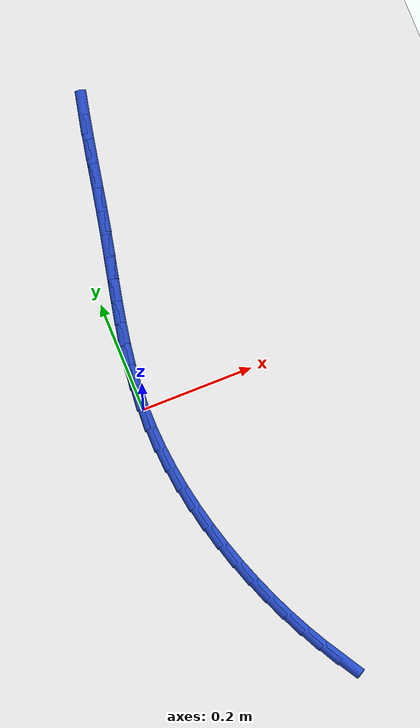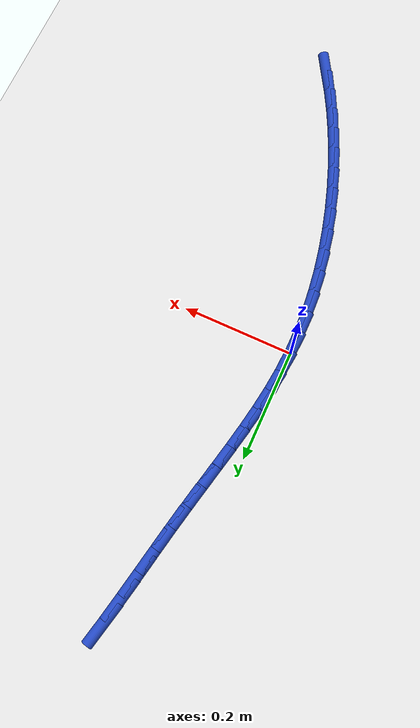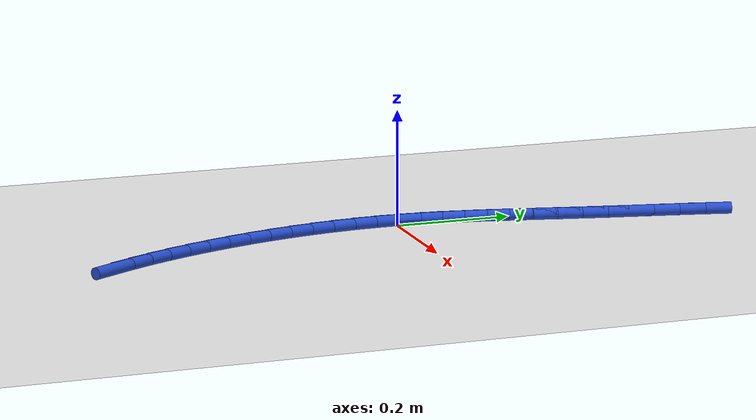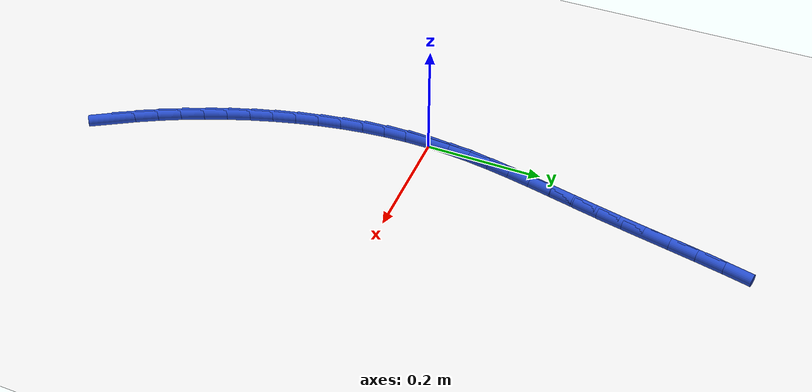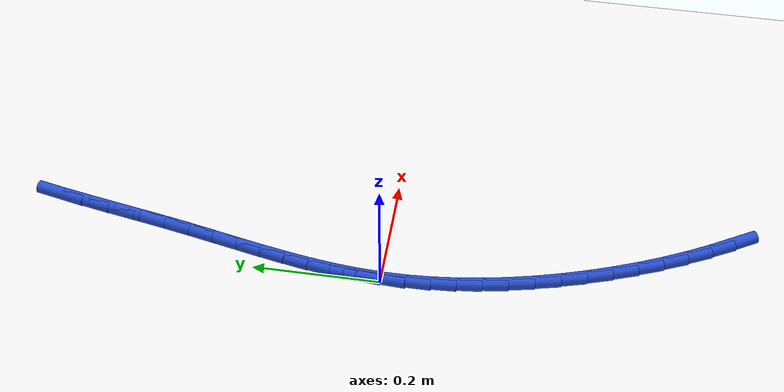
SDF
<sdf version="1.6">
 <world name="default">
  <model name="ground_plane">
   <static>1</static>
   <link name="link">
    <collision name="collision">
     <geometry><plane><normal>0 0 1</normal><size>100 100</size></plane></geometry>
     <surface><friction><ode><mu>100</mu><mu2>50</mu2></ode></friction></surface>
    </collision>
    <visual name="visual">
     <cast_shadows>0</cast_shadows>
     <geometry><plane><normal>0 0 1</normal><size>100 100</size></plane></geometry>
     <material>
      <script><uri>file://media/materials/scripts/gazebo.material</uri><name>Gazebo/WhiteGlow</name></script>
     </material>
    </visual>
   </link>
  </model>
  <model name="line">
   <link name="link_0">
    <pose>1.0408340855860843e-17 6.938893903907228e-18 0.01 0 1.57 1.5118387415920338</pose>
    <collision name="collision">
     <geometry><cylinder><radius>0.01</radius><length>0.08</length></cylinder></geometry>
    </collision>
    <visual name="visual">
     <material>
      <script><name>Gazebo/Blue</name><uri>file://media/materials/scripts/gazebo.material</uri></script>
     </material>
     <geometry><cylinder><radius>0.01</radius><length>0.08</length></cylinder></geometry>
    </visual>
   </link>
   <link name="link_1">
    <pose>0.00226688801252979 0.03840491144058814 0.01 0 1.57 1.4633935869433146</pose>
    <collision name="collision">
     <geometry><cylinder><radius>0.01</radius><length>0.08</length></cylinder></geometry>
    </collision>
    <visual name="visual">
     <material>
      <script><name>Gazebo/Blue</name><uri>file://media/materials/scripts/gazebo.material</uri></script>
     </material>
     <geometry><cylinder><radius>0.01</radius><length>0.08</length></cylinder></geometry>
    </visual>
   </link>
   <link name="link_2">
    <pose>0.006378870510455926 0.07654322411985756 0.01 0 1.57 1.4229863500662054</pose>
    <collision name="collision">
     <geometry><cylinder><radius>0.01</radius><length>0.08</length></cylinder></geometry>
    </collision>
    <visual name="visual">
     <material>
      <script><name>Gazebo/Blue</name><uri>file://media/materials/scripts/gazebo.material</uri></script>
     </material>
     <geometry><cylinder><radius>0.01</radius><length>0.08</length></cylinder></geometry>
    </visual>
   </link>
   <link name="link_3">
    <pose>0.012048836085155338 0.1146232871862142 0.01 0 1.57 1.3911986098898457</pose>
    <collision name="collision">
     <geometry><cylinder><radius>0.01</radius><length>0.08</length></cylinder></geometry>
    </collision>
    <visual name="visual">
     <material>
      <script><name>Gazebo/Blue</name><uri>file://media/materials/scripts/gazebo.material</uri></script>
     </material>
     <geometry><cylinder><radius>0.01</radius><length>0.08</length></cylinder></geometry>
    </visual>
   </link>
   <link name="link_4">
    <pose>0.01898967332800496 0.152853449788064 0.01 0 1.57 1.3682512714293409</pose>
    <collision name="collision">
     <geometry><cylinder><radius>0.01</radius><length>0.08</length></cylinder></geometry>
    </collision>
    <visual name="visual">
     <material>
      <script><name>Gazebo/Blue</name><uri>file://media/materials/scripts/gazebo.material</uri></script>
     </material>
     <geometry><cylinder><radius>0.01</radius><length>0.08</length></cylinder></geometry>
    </visual>
   </link>
   <link name="link_5">
    <pose>0.02691427083038169 0.19144206107381276 0.01 0 1.57 1.3540741341417506</pose>
    <collision name="collision">
     <geometry><cylinder><radius>0.01</radius><length>0.08</length></cylinder></geometry>
    </collision>
    <visual name="visual">
     <material>
      <script><name>Gazebo/Blue</name><uri>file://media/materials/scripts/gazebo.material</uri></script>
     </material>
     <geometry><cylinder><radius>0.01</radius><length>0.08</length></cylinder></geometry>
    </visual>
   </link>
   <link name="link_6">
    <pose>0.03553551718366247 0.23059747019186638 0.01 0 1.57 1.3483759285620933</pose>
    <collision name="collision">
     <geometry><cylinder><radius>0.01</radius><length>0.08</length></cylinder></geometry>
    </collision>
    <visual name="visual">
     <material>
      <script><name>Gazebo/Blue</name><uri>file://media/materials/scripts/gazebo.material</uri></script>
     </material>
     <geometry><cylinder><radius>0.01</radius><length>0.08</length></cylinder></geometry>
    </visual>
   </link>
   <link name="link_7">
    <pose>0.04456630097922422 0.2705280262906308 0.01 0 1.57 1.3507024474958809</pose>
    <collision name="collision">
     <geometry><cylinder><radius>0.01</radius><length>0.08</length></cylinder></geometry>
    </collision>
    <visual name="visual">
     <material>
      <script><name>Gazebo/Blue</name><uri>file://media/materials/scripts/gazebo.material</uri></script>
     </material>
     <geometry><cylinder><radius>0.01</radius><length>0.08</length></cylinder></geometry>
    </visual>
   </link>
   <link name="link_8">
    <pose>0.053719510808443824 0.3114420785185118 0.01 0 1.57 1.3604277967275744</pose>
    <collision name="collision">
     <geometry><cylinder><radius>0.01</radius><length>0.08</length></cylinder></geometry>
    </collision>
    <visual name="visual">
     <material>
      <script><name>Gazebo/Blue</name><uri>file://media/materials/scripts/gazebo.material</uri></script>
     </material>
     <geometry><cylinder><radius>0.01</radius><length>0.08</length></cylinder></geometry>
    </visual>
   </link>
   <link name="link_9">
    <pose>0.06270983250188547 0.353545841716148 0.01 0 1.57 1.37199462553629</pose>
    <collision name="collision">
     <geometry><cylinder><radius>0.01</radius><length>0.08</length></cylinder></geometry>
    </collision>
    <visual name="visual">
     <material>
      <script><name>Gazebo/Blue</name><uri>file://media/materials/scripts/gazebo.material</uri></script>
     </material>
     <geometry><cylinder><radius>0.01</radius><length>0.08</length></cylinder></geometry>
    </visual>
   </link>
   <link name="link_10">
    <pose>0.07143064893689718 0.39683331940712946 0.01 0 1.57 1.376511682294516</pose>
    <collision name="collision">
     <geometry><cylinder><radius>0.01</radius><length>0.08</length></cylinder></geometry>
    </collision>
    <visual name="visual">
     <material>
      <script><name>Gazebo/Blue</name><uri>file://media/materials/scripts/gazebo.material</uri></script>
     </material>
     <geometry><cylinder><radius>0.01</radius><length>0.08</length></cylinder></geometry>
    </visual>
   </link>
   <link name="link_11">
    <pose>0.08010328609658643 0.44090906694204857 0.01 0 1.57 1.3734969270097608</pose>
    <collision name="collision">
     <geometry><cylinder><radius>0.01</radius><length>0.08</length></cylinder></geometry>
    </collision>
    <visual name="visual">
     <material>
      <script><name>Gazebo/Blue</name><uri>file://media/materials/scripts/gazebo.material</uri></script>
     </material>
     <geometry><cylinder><radius>0.01</radius><length>0.08</length></cylinder></geometry>
    </visual>
   </link>
   <link name="link_12">
    <pose>0.08898421134203051 0.485335907599054 0.01 0 1.57 1.3630672160436106</pose>
    <collision name="collision">
     <geometry><cylinder><radius>0.01</radius><length>0.08</length></cylinder></geometry>
    </collision>
    <visual name="visual">
     <material>
      <script><name>Gazebo/Blue</name><uri>file://media/materials/scripts/gazebo.material</uri></script>
     </material>
     <geometry><cylinder><radius>0.01</radius><length>0.08</length></cylinder></geometry>
    </visual>
   </link>
   <link name="link_13">
    <pose>0.09832989203430673 0.5296766646562946 0.01 0 1.57 1.3449689978395563</pose>
    <collision name="collision">
     <geometry><cylinder><radius>0.01</radius><length>0.08</length></cylinder></geometry>
    </collision>
    <visual name="visual">
     <material>
      <script><name>Gazebo/Blue</name><uri>file://media/materials/scripts/gazebo.material</uri></script>
     </material>
     <geometry><cylinder><radius>0.01</radius><length>0.08</length></cylinder></geometry>
    </visual>
   </link>
   <link name="link_166">
    <pose>0.15252916920179274 -0.5332855697188569 0.01 0 1.57 -1.0345479813871914</pose>
    <collision name="collision">
     <geometry><cylinder><radius>0.01</radius><length>0.08</length></cylinder></geometry>
    </collision>
    <visual name="visual">
     <material>
      <script><name>Gazebo/Blue</name><uri>file://media/materials/scripts/gazebo.material</uri></script>
     </material>
     <geometry><cylinder><radius>0.01</radius><length>0.08</length></cylinder></geometry>
    </visual>
   </link>
   <link name="link_167">
    <pose>0.13210323701661605 -0.4989182286343068 0.01 0 1.57 -1.0770530149725939</pose>
    <collision name="collision">
     <geometry><cylinder><radius>0.01</radius><length>0.08</length></cylinder></geometry>
    </collision>
    <visual name="visual">
     <material>
      <script><name>Gazebo/Blue</name><uri>file://media/materials/scripts/gazebo.material</uri></script>
     </material>
     <geometry><cylinder><radius>0.01</radius><length>0.08</length></cylinder></geometry>
    </visual>
   </link>
   <link name="link_168">
    <pose>0.11305893524647435 -0.4635334525334743 0.01 0 1.57 -1.1176784614631627</pose>
    <collision name="collision">
     <geometry><cylinder><radius>0.01</radius><length>0.08</length></cylinder></geometry>
    </collision>
    <visual name="visual">
     <material>
      <script><name>Gazebo/Blue</name><uri>file://media/materials/scripts/gazebo.material</uri></script>
     </material>
     <geometry><cylinder><radius>0.01</radius><length>0.08</length></cylinder></geometry>
    </visual>
   </link>
   <link name="link_169">
    <pose>0.09538707898626171 -0.42723928827631946 0.01 0 1.57 -1.1565927365386546</pose>
    <collision name="collision">
     <geometry><cylinder><radius>0.01</radius><length>0.08</length></cylinder></geometry>
    </collision>
    <visual name="visual">
     <material>
      <script><name>Gazebo/Blue</name><uri>file://media/materials/scripts/gazebo.material</uri></script>
     </material>
     <geometry><cylinder><radius>0.01</radius><length>0.08</length></cylinder></geometry>
    </visual>
   </link>
   <link name="link_170">
    <pose>0.07907848333087174 -0.39014378272280154 0.01 0 1.57 -1.1939682014059627</pose>
    <collision name="collision">
     <geometry><cylinder><radius>0.01</radius><length>0.08</length></cylinder></geometry>
    </collision>
    <visual name="visual">
     <material>
      <script><name>Gazebo/Blue</name><uri>file://media/materials/scripts/gazebo.material</uri></script>
     </material>
     <geometry><cylinder><radius>0.01</radius><length>0.08</length></cylinder></geometry>
    </visual>
   </link>
   <link name="link_171">
    <pose>0.06412396337519913 -0.3523549827328819 0.01 0 1.57 -1.230122479069917</pose>
    <collision name="collision">
     <geometry><cylinder><radius>0.01</radius><length>0.08</length></cylinder></geometry>
    </collision>
    <visual name="visual">
     <material>
      <script><name>Gazebo/Blue</name><uri>file://media/materials/scripts/gazebo.material</uri></script>
     </material>
     <geometry><cylinder><radius>0.01</radius><length>0.08</length></cylinder></geometry>
    </visual>
   </link>
   <link name="link_172">
    <pose>0.05052077718374102 -0.31398158520913144 0.01 0 1.57 -1.2665995561654841</pose>
    <collision name="collision">
     <geometry><cylinder><radius>0.01</radius><length>0.08</length></cylinder></geometry>
    </collision>
    <visual name="visual">
     <material>
      <script><name>Gazebo/Blue</name><uri>file://media/materials/scripts/gazebo.material</uri></script>
     </material>
     <geometry><cylinder><radius>0.01</radius><length>0.08</length></cylinder></geometry>
    </visual>
   </link>
   <link name="link_173">
    <pose>0.03832630930390934 -0.2751383533214487 0.01 0 1.57 -1.3044004431245568</pose>
    <collision name="collision">
     <geometry><cylinder><radius>0.01</radius><length>0.08</length></cylinder></geometry>
    </collision>
    <visual name="visual">
     <material>
      <script><name>Gazebo/Blue</name><uri>file://media/materials/scripts/gazebo.material</uri></script>
     </material>
     <geometry><cylinder><radius>0.01</radius><length>0.08</length></cylinder></geometry>
    </visual>
   </link>
   <link name="link_174">
    <pose>0.027630707359215505 -0.23594335576449257 0.01 0 1.57 -1.3438208108258565</pose>
    <collision name="collision">
     <geometry><cylinder><radius>0.01</radius><length>0.08</length></cylinder></geometry>
    </collision>
    <visual name="visual">
     <material>
      <script><name>Gazebo/Blue</name><uri>file://media/materials/scripts/gazebo.material</uri></script>
     </material>
     <geometry><cylinder><radius>0.01</radius><length>0.08</length></cylinder></geometry>
    </visual>
   </link>
   <link name="link_175">
    <pose>0.018524448486642617 -0.19651469447812014 0.01 0 1.57 -1.3851577612362853</pose>
    <collision name="collision">
     <geometry><cylinder><radius>0.01</radius><length>0.08</length></cylinder></geometry>
    </collision>
    <visual name="visual">
     <material>
      <script><name>Gazebo/Blue</name><uri>file://media/materials/scripts/gazebo.material</uri></script>
     </material>
     <geometry><cylinder><radius>0.01</radius><length>0.08</length></cylinder></geometry>
    </visual>
   </link>
   <link name="link_176">
    <pose>0.011098009823173601 -0.15697047140218728 0.01 0 1.57 -1.4287176234990135</pose>
    <collision name="collision">
     <geometry><cylinder><radius>0.01</radius><length>0.08</length></cylinder></geometry>
    </collision>
    <visual name="visual">
     <material>
      <script><name>Gazebo/Blue</name><uri>file://media/materials/scripts/gazebo.material</uri></script>
     </material>
     <geometry><cylinder><radius>0.01</radius><length>0.08</length></cylinder></geometry>
    </visual>
   </link>
   <link name="link_177">
    <pose>0.005441868505791851 -0.11742878847655251 0.01 0 1.57 -1.4748144696605634</pose>
    <collision name="collision">
     <geometry><cylinder><radius>0.01</radius><length>0.08</length></cylinder></geometry>
    </collision>
    <visual name="visual">
     <material>
      <script><name>Gazebo/Blue</name><uri>file://media/materials/scripts/gazebo.material</uri></script>
     </material>
     <geometry><cylinder><radius>0.01</radius><length>0.08</length></cylinder></geometry>
    </visual>
   </link>
   <link name="link_178">
    <pose>0.001646501671480281 -0.07800774764107182 0.01 0 1.57 -1.5237660215602424</pose>
    <collision name="collision">
     <geometry><cylinder><radius>0.01</radius><length>0.08</length></cylinder></geometry>
    </collision>
    <visual name="visual">
     <material>
      <script><name>Gazebo/Blue</name><uri>file://media/materials/scripts/gazebo.material</uri></script>
     </material>
     <geometry><cylinder><radius>0.01</radius><length>0.08</length></cylinder></geometry>
    </visual>
   </link>
   <link name="link_179">
    <pose>-0.00019761354277802318 -0.038825450835602016 0.01 0 1.57 1.5657065768475653</pose>
    <collision name="collision">
     <geometry><cylinder><radius>0.01</radius><length>0.08</length></cylinder></geometry>
    </collision>
    <visual name="visual">
     <material>
      <script><name>Gazebo/Blue</name><uri>file://media/materials/scripts/gazebo.material</uri></script>
     </material>
     <geometry><cylinder><radius>0.01</radius><length>0.08</length></cylinder></geometry>
    </visual>
   </link>
   <link name="link_180">
    <pose>1.5612511283791264e-17 7.632783294297951e-17 0.01 0 1.57 1.5101202101927198</pose>
    <collision name="collision">
     <geometry><cylinder><radius>0.01</radius><length>0.08</length></cylinder></geometry>
    </collision>
    <visual name="visual">
     <material>
      <script><name>Gazebo/Blue</name><uri>file://media/materials/scripts/gazebo.material</uri></script>
     </material>
     <geometry><cylinder><radius>0.01</radius><length>0.08</length></cylinder></geometry>
    </visual>
   </link>
   <link name="link_181">
    <pose>0.002329819436797477 0.03835050292587762 0.01 0 1.57 1.5101202101927198</pose>
    <collision name="collision">
     <geometry><cylinder><radius>0.01</radius><length>0.08</length></cylinder></geometry>
    </collision>
    <visual name="visual">
     <material>
      <script><name>Gazebo/Blue</name><uri>file://media/materials/scripts/gazebo.material</uri></script>
     </material>
     <geometry><cylinder><radius>0.01</radius><length>0.08</length></cylinder></geometry>
    </visual>
   </link>
  </model>
 </world>
</sdf>
